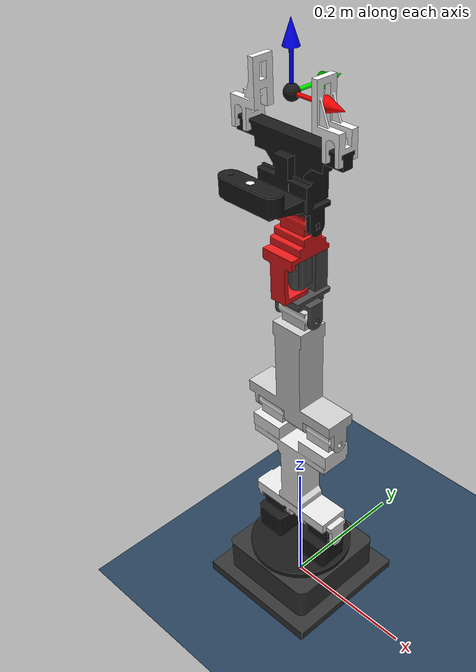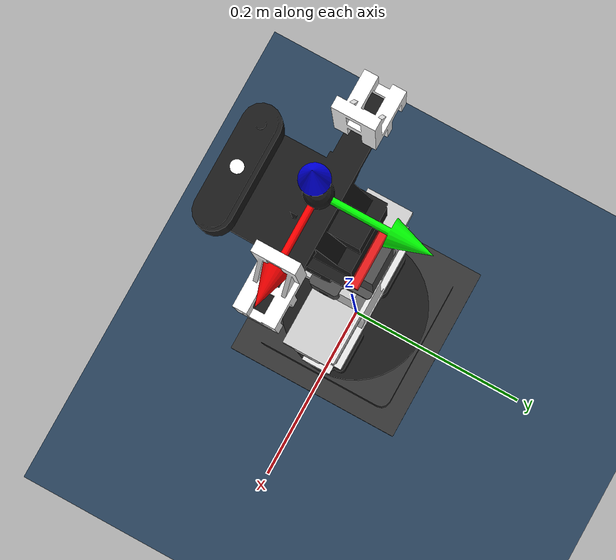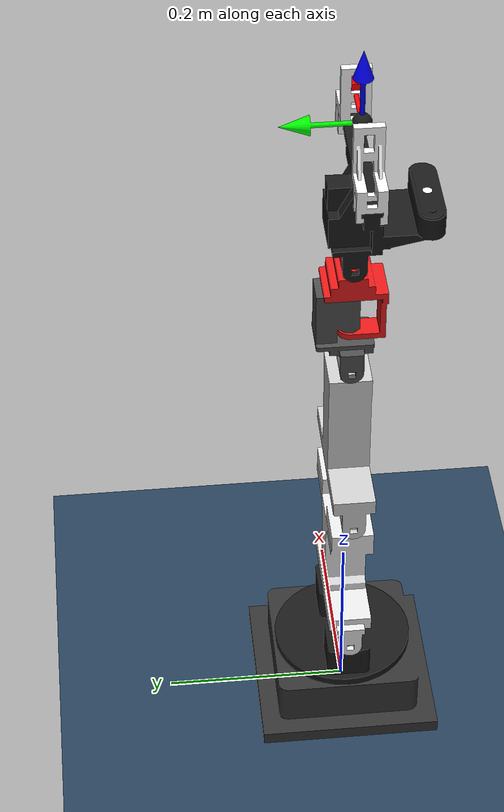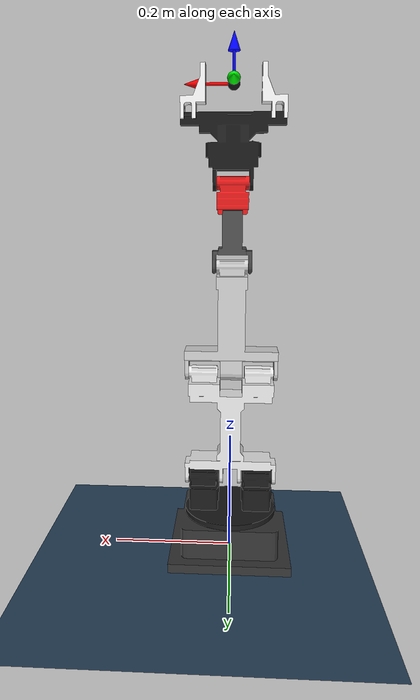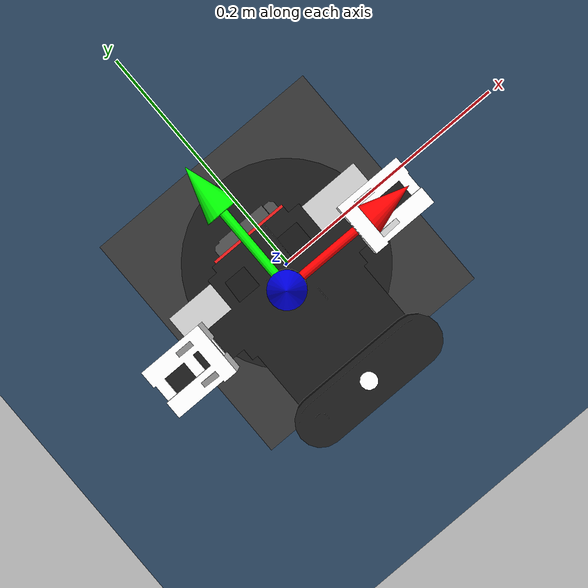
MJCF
<mujoco model="robot">
  <compiler angle="radian" meshdir="meshes"/>

  <option gravity="0 0 -9.81" integrator="implicitfast" cone="elliptic" impratio="100" />

  <!-- ================= ASSETS ================= -->
  <asset>
    <mesh name="base_link" file="base_link.stl"/>
    <mesh name="link1" file="link_1.stl"/>
    <mesh name="link2" file="link_2.stl"/>
    <mesh name="link3" file="link_3.stl"/>
    <mesh name="link4" file="link_4.stl"/>
    <mesh name="link5" file="link_5.stl"/>
    <mesh name="gripper_base" file="gripper_base_link.stl"/>
    <mesh name="gripper_left" file="gripper_link_left.stl"/>
    <mesh name="gripper_right" file="gripper_link_right.stl"/>
    <mesh name="camera" file="camera.stl"/>
    <mesh name="axis_x" file="axis_x.stl"/>
    <mesh name="axis_y" file="axis_y.stl"/>
    <mesh name="axis_z" file="axis_z.stl"/>
    <texture name="grid"
             type="2d"
             builtin="checker"
             width="512"
             height="512"
             rgb1="0.2 0.3 0.4"
             rgb2="0.1 0.2 0.3"/>

    <material name="grid_mat"
              texture="grid"
              texrepeat="10 10"
              reflectance="0.1"/>

    <texture name="sky"
             type="skybox"
             builtin="gradient"
             rgb1="0.9 0.9 0.9"
             rgb2="0.6 0.6 0.6"
             width="512"
             height="512"/>
  </asset>

  <!-- ================= WORLD ================= -->
  <worldbody>

    <!-- Lighting -->
    <light name="sun"
           directional="true"
           pos="0 0 5"
           dir="0 0 -1"
           diffuse="1 1 1"
           specular="0.5 0.5 0.5"/>

    <light directional="true"
           pos="0 0 3"
           dir="0 0 -1"/>

    <!-- Ground plane -->
    <geom name="ground"
          type="plane"
          size="10 10 0.1"
          pos="0 0 0"
          material="grid_mat"
          contype="3"
          conaffinity="1"/>

    <body name="goal_marker" mocap="true">
        <geom type="box"
              size="0.02 0.02 0.02"
              rgba="0 1 0 1"
              contype="0"
              conaffinity="0"/>
    </body>

    <!-- Base -->
    <body name="base_link" pos="0 0 0">
      <inertial pos="0 0.031146 0" mass="1.7941" fullinertia="0.0048349 0.0083635 0.0048349 0 0 0"/>
      <geom type="mesh" mesh="base_link" rgba="0.2 0.2 0.2 1" contype="1" conaffinity="0"/>

      <!-- Joint 1 -->
      <body name="link1" pos="0 0 0.0592">
        <joint name="joint1" type="hinge" axis="0 0 1" limited="true" range="-2.09 2.09"/>
        <inertial pos="-0.00033867 0.0 0.04069188" mass="0.26598862" fullinertia="0.00069223 0.00112777 0.00066577 0.0 -0.00000598 0.0"/>
        <geom type="mesh" mesh="link1" rgba="0.1 0.1 0.1 1" contype="1" conaffinity="0"/>

        <!-- Joint 2 -->
        <body name="link2" pos="0 0 0.0678">
          <joint name="joint2" type="hinge" axis="1 0 0" limited="true" range="-1.57 1.57"/>
          <inertial pos="0.00047806 0.0 0.12861482" mass="0.29648615" fullinertia="0.00610192 0.00662316 0.00058255 0.0 0.00001654 0.00000002"/>
          <geom type="mesh" mesh="link2" rgba="0.9 0.9 0.9 1" contype="1" conaffinity="0"/>

          <!-- Joint 3 -->
          <body name="link3" pos="0 0 0.185">
            <joint name="joint3" type="hinge" axis="1 0 0" limited="true" range="-1.57 1.57"/>
            <inertial pos="-0.00053036 0.0 0.10618762" mass="0.18197777" fullinertia="0.00288076 0.00301111 0.00016902 0.0 -0.00000804 0.0"/>
            <geom type="mesh" mesh="link3" rgba="0.8 0.8 0.8 1" contype="1" conaffinity="0"/>

            <!-- Joint 4 -->
            <body name="link4" pos="0 0 0.18">
              <joint name="joint4" type="hinge" axis="1 0 0" limited="true" range="-1.57 1.57"/>
              <inertial pos="-0.00023697 0.00957601 0.05302509" mass="0.10881011" fullinertia="0.00039796 0.00038409 0.00004420 0.0 0.0 0.00006328"/>
              <geom type="mesh" mesh="link4" rgba="0.3 0.3 0.3 1" contype="1" conaffinity="0"/>

              <!-- Joint 5 -->
              <body name="link5" pos="0 0 0.065">
                <joint name="joint5" type="hinge" axis="0 0 1" limited="true" range="-1.57 1.57"/>
                <inertial pos="-0.00039819 -0.00306049 0.04570833" mass="0.11311685" fullinertia="0.00034785 0.00035044 0.00003925 0.0 -0.00000314 -0.00000105"/>
                <geom type="mesh" mesh="link5" rgba="0.9 0.1 0.1 1" contype="1" conaffinity="0"/>

                <!-- Joint 6 -->
                <body name="gripper_base_link" pos="0 0 0.07">
                  <joint name="joint6" type="hinge" axis="1 0 0" limited="true" range="-1.57 1.57"/>
                  <inertial pos="-0.00010299 -0.02688450 0.06603903" mass="0.26325356" fullinertia="0.00176368 0.00146563 0.00066230 -0.00000086 0.00000594 -0.00049322"/>
                  <geom type="mesh" mesh="gripper_base" rgba="0.1 0.1 0.1 1" contype="5" conaffinity="1"/>

                  <!-- Left finger -->
                  <body name="gripper_left_finger" pos="0 -0.00758 0.111">
                    <joint name="gripper_left_finger_joint" type="slide" axis="1 0 0" limited="true" range="0.0 0.039"/>
                    <geom type="mesh" mesh="gripper_left" rgba="1 1 1 1" contype="2" conaffinity="1"/>
                  </body>

                  <!-- Right finger -->
                  <body name="gripper_right_finger" pos="0 -0.00758 0.111">
                    <joint name="gripper_right_finger_joint" type="slide" axis="1 0 0" limited="true" range="-0.039 0.0"/>
                    <geom type="mesh" mesh="gripper_right" rgba="1 1 1 1" contype="2" conaffinity="1"/>
                  </body>

                  <!-- Camera -->
                  <body name="camera" pos="0 -0.07367 0.07055">
                    <geom type="mesh" mesh="camera" rgba="1 1 1 1" contype="3" conaffinity="0"/>
                    <camera name="hand_cam" mode="fixed" fovy="45" pos="0 0 0" euler="0 0 0"> </camera>
                  </body>

                  <!-- EE reference -->
                  <body name="ee_ref_link" pos="0 -0.00758 0.155">
                    <geom type="sphere" size="0.01" rgba="0.1 0.1 0.1 1" contype="2" conaffinity="0"/>
                    <site name="ee_site" pos="0 0 0" size="0.005" rgba="1 0 1 1"/>
                    <body name="ee_axis_x">
                      <geom type="mesh" mesh="axis_x" rgba="1 0 0 1" contype="2" conaffinity="0"/>
                    </body>
                    <body name="ee_axis_y">
                      <geom type="mesh" mesh="axis_y" rgba="0 1 0 1" contype="2" conaffinity="0"/>
                    </body>
                    <body name="ee_axis_z">
                      <geom type="mesh" mesh="axis_z" rgba="0 0 1 1" contype="2" conaffinity="0"/>
                    </body>
                  </body>

                </body>
              </body>
            </body>
          </body>
        </body>
      </body>
    </body>

  </worldbody>

  <!-- ================= Gripper actuator ================= -->
  <actuator>
    <position name="joint1" joint="joint1" ctrlrange="-2.09 2.09" kp="500.0" kv="0.1" forcerange="-9 9"/>
    <position name="joint2" joint="joint2" ctrlrange="-1.57 1.57" kp="500.0" kv="0.1" forcerange="-9 9"/>
    <position name="joint3" joint="joint3" ctrlrange="-1.57 1.57" kp="500.0" kv="0.1" forcerange="-9 9"/>
    <position name="joint4" joint="joint4" ctrlrange="-1.57 1.57" kp="500.0" kv="0.1" forcerange="-9 9"/>
    <position name="joint5" joint="joint5" ctrlrange="-1.57 1.57" kp="500.0" kv="0.1" forcerange="-9 9"/>
    <position name="joint6" joint="joint6" ctrlrange="-1.57 1.57" kp="500.0" kv="0.1" forcerange="-9 9"/>
    <position name="gripper_left_finger_joint" joint="gripper_left_finger_joint" ctrlrange="0.0 0.039" kp="500.0" kv="0.1" forcerange="-9 9"/>
    <position name="gripper_right_finger_joint" joint="gripper_right_finger_joint" ctrlrange="-0.039 0.0" kp="500.0" kv="0.1" forcerange="-9 9"/>
  </actuator>

  <keyframe>
    <key name="home" qpos="0 0.57 -0.73 -1.24 0 -0.77 0.0 0.0"/>
  </keyframe>

</mujoco>
